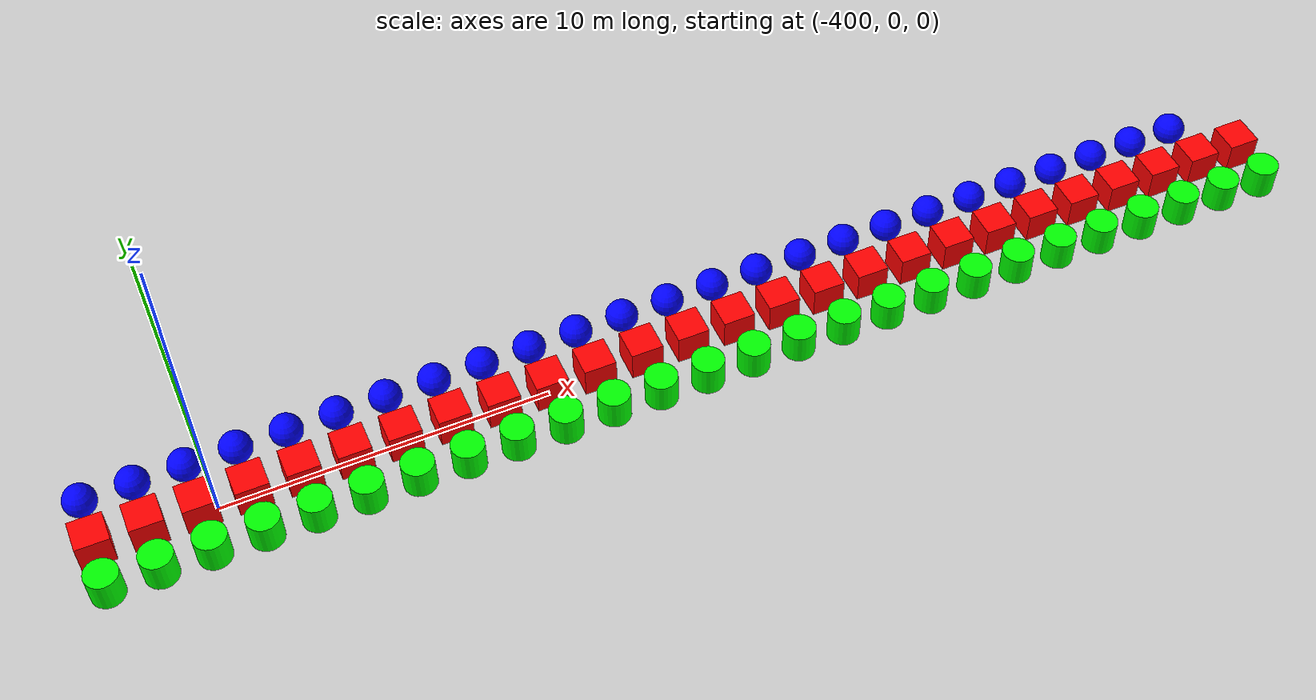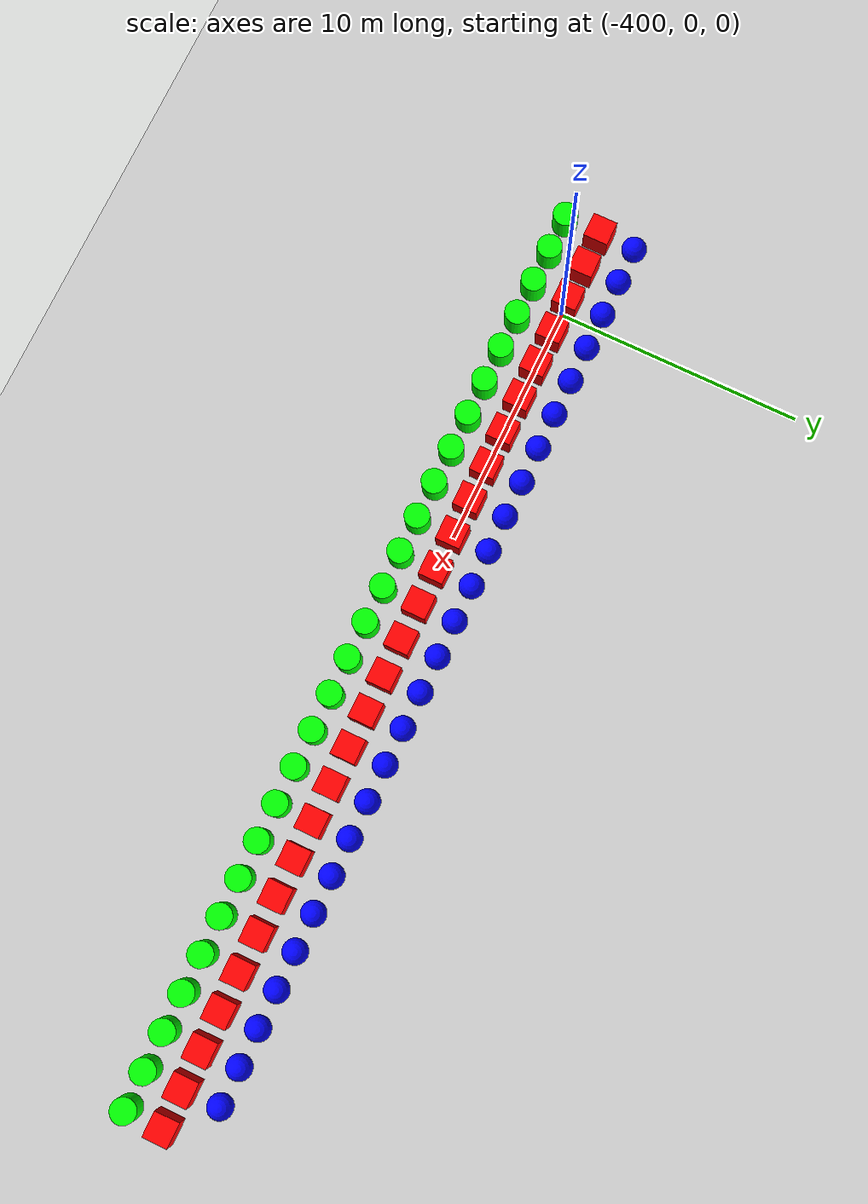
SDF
<sdf version="1.6">
 <world name="shapes">
  <model name="ground_plane">
   <static>true</static>
   <link name="link">
    <collision name="collision">
     <geometry><plane><normal>0 0 1</normal><size>100 100</size></plane></geometry>
    </collision>
    <visual name="visual">
     <geometry><plane><normal>0 0 1</normal><size>100 100</size></plane></geometry>
     <material>
      <ambient>0.8 0.8 0.8 1</ambient>
      <diffuse>0.8 0.8 0.8 1</diffuse>
      <specular>0.8 0.8 0.8 1</specular>
     </material>
    </visual>
   </link>
  </model>
  <model name="box_231">
   <static>true</static>
   <pose>-403.5 0 0.5 0 0 0</pose>
   <link name="box_link">
    <inertial>
     <inertia><ixx>1</ixx><ixy>0</ixy><ixz>0</ixz><iyy>1</iyy><iyz>0</iyz><izz>1</izz></inertia>
     <mass>1.0</mass>
    </inertial>
    <collision name="box_collision"><geometry><box><size>1 1 1</size></box></geometry></collision>
    <visual name="box_visual">
     <geometry><box><size>1 1 1</size></box></geometry>
     <material><ambient>1 0 0 1</ambient><diffuse>1 0 0 1</diffuse><specular>1 0 0 1</specular></material>
    </visual>
   </link>
  </model>
  <model name="cylinder_231">
   <static>true</static>
   <pose>-403.5 -1.5 0.5 0 0 0</pose>
   <link name="cylinder_link">
    <inertial>
     <inertia><ixx>2</ixx><ixy>0</ixy><ixz>0</ixz><iyy>2</iyy><iyz>0</iyz><izz>2</izz></inertia>
     <mass>2.0</mass>
    </inertial>
    <collision name="cylinder_collision">
     <geometry><cylinder><radius>0.5</radius><length>1.0</length></cylinder></geometry>
    </collision>
    <visual name="cylinder_visual">
     <geometry><cylinder><radius>0.5</radius><length>1.0</length></cylinder></geometry>
     <material><ambient>0 1 0 1</ambient><diffuse>0 1 0 1</diffuse><specular>0 1 0 1</specular></material>
    </visual>
   </link>
  </model>
  <model name="sphere_231">
   <static>true</static>
   <pose>-403.5 1.5 0.5 0 0 0</pose>
   <link name="sphere_link">
    <inertial>
     <inertia><ixx>3</ixx><ixy>0</ixy><ixz>0</ixz><iyy>3</iyy><iyz>0</iyz><izz>3</izz></inertia>
     <mass>3.0</mass>
    </inertial>
    <collision name="sphere_collision"><geometry><sphere><radius>0.5</radius></sphere></geometry></collision>
    <visual name="sphere_visual">
     <geometry><sphere><radius>0.5</radius></sphere></geometry>
     <material><ambient>0 0 1 1</ambient><diffuse>0 0 1 1</diffuse><specular>0 0 1 1</specular></material>
    </visual>
   </link>
  </model>
  <model name="box_232">
   <static>true</static>
   <pose>-402.0 0 0.5 0 0 0</pose>
   <link name="box_link">
    <inertial>
     <inertia><ixx>1</ixx><ixy>0</ixy><ixz>0</ixz><iyy>1</iyy><iyz>0</iyz><izz>1</izz></inertia>
     <mass>1.0</mass>
    </inertial>
    <collision name="box_collision"><geometry><box><size>1 1 1</size></box></geometry></collision>
    <visual name="box_visual">
     <geometry><box><size>1 1 1</size></box></geometry>
     <material><ambient>1 0 0 1</ambient><diffuse>1 0 0 1</diffuse><specular>1 0 0 1</specular></material>
    </visual>
   </link>
  </model>
  <model name="cylinder_232">
   <static>true</static>
   <pose>-402.0 -1.5 0.5 0 0 0</pose>
   <link name="cylinder_link">
    <inertial>
     <inertia><ixx>2</ixx><ixy>0</ixy><ixz>0</ixz><iyy>2</iyy><iyz>0</iyz><izz>2</izz></inertia>
     <mass>2.0</mass>
    </inertial>
    <collision name="cylinder_collision">
     <geometry><cylinder><radius>0.5</radius><length>1.0</length></cylinder></geometry>
    </collision>
    <visual name="cylinder_visual">
     <geometry><cylinder><radius>0.5</radius><length>1.0</length></cylinder></geometry>
     <material><ambient>0 1 0 1</ambient><diffuse>0 1 0 1</diffuse><specular>0 1 0 1</specular></material>
    </visual>
   </link>
  </model>
  <model name="sphere_232">
   <static>true</static>
   <pose>-402.0 1.5 0.5 0 0 0</pose>
   <link name="sphere_link">
    <inertial>
     <inertia><ixx>3</ixx><ixy>0</ixy><ixz>0</ixz><iyy>3</iyy><iyz>0</iyz><izz>3</izz></inertia>
     <mass>3.0</mass>
    </inertial>
    <collision name="sphere_collision"><geometry><sphere><radius>0.5</radius></sphere></geometry></collision>
    <visual name="sphere_visual">
     <geometry><sphere><radius>0.5</radius></sphere></geometry>
     <material><ambient>0 0 1 1</ambient><diffuse>0 0 1 1</diffuse><specular>0 0 1 1</specular></material>
    </visual>
   </link>
  </model>
  <model name="box_233">
   <static>true</static>
   <pose>-400.5 0 0.5 0 0 0</pose>
   <link name="box_link">
    <inertial>
     <inertia><ixx>1</ixx><ixy>0</ixy><ixz>0</ixz><iyy>1</iyy><iyz>0</iyz><izz>1</izz></inertia>
     <mass>1.0</mass>
    </inertial>
    <collision name="box_collision"><geometry><box><size>1 1 1</size></box></geometry></collision>
    <visual name="box_visual">
     <geometry><box><size>1 1 1</size></box></geometry>
     <material><ambient>1 0 0 1</ambient><diffuse>1 0 0 1</diffuse><specular>1 0 0 1</specular></material>
    </visual>
   </link>
  </model>
  <model name="cylinder_233">
   <static>true</static>
   <pose>-400.5 -1.5 0.5 0 0 0</pose>
   <link name="cylinder_link">
    <inertial>
     <inertia><ixx>2</ixx><ixy>0</ixy><ixz>0</ixz><iyy>2</iyy><iyz>0</iyz><izz>2</izz></inertia>
     <mass>2.0</mass>
    </inertial>
    <collision name="cylinder_collision">
     <geometry><cylinder><radius>0.5</radius><length>1.0</length></cylinder></geometry>
    </collision>
    <visual name="cylinder_visual">
     <geometry><cylinder><radius>0.5</radius><length>1.0</length></cylinder></geometry>
     <material><ambient>0 1 0 1</ambient><diffuse>0 1 0 1</diffuse><specular>0 1 0 1</specular></material>
    </visual>
   </link>
  </model>
  <model name="sphere_233">
   <static>true</static>
   <pose>-400.5 1.5 0.5 0 0 0</pose>
   <link name="sphere_link">
    <inertial>
     <inertia><ixx>3</ixx><ixy>0</ixy><ixz>0</ixz><iyy>3</iyy><iyz>0</iyz><izz>3</izz></inertia>
     <mass>3.0</mass>
    </inertial>
    <collision name="sphere_collision"><geometry><sphere><radius>0.5</radius></sphere></geometry></collision>
    <visual name="sphere_visual">
     <geometry><sphere><radius>0.5</radius></sphere></geometry>
     <material><ambient>0 0 1 1</ambient><diffuse>0 0 1 1</diffuse><specular>0 0 1 1</specular></material>
    </visual>
   </link>
  </model>
  <model name="box_234">
   <static>true</static>
   <pose>-399.0 0 0.5 0 0 0</pose>
   <link name="box_link">
    <inertial>
     <inertia><ixx>1</ixx><ixy>0</ixy><ixz>0</ixz><iyy>1</iyy><iyz>0</iyz><izz>1</izz></inertia>
     <mass>1.0</mass>
    </inertial>
    <collision name="box_collision"><geometry><box><size>1 1 1</size></box></geometry></collision>
    <visual name="box_visual">
     <geometry><box><size>1 1 1</size></box></geometry>
     <material><ambient>1 0 0 1</ambient><diffuse>1 0 0 1</diffuse><specular>1 0 0 1</specular></material>
    </visual>
   </link>
  </model>
  <model name="cylinder_234">
   <static>true</static>
   <pose>-399.0 -1.5 0.5 0 0 0</pose>
   <link name="cylinder_link">
    <inertial>
     <inertia><ixx>2</ixx><ixy>0</ixy><ixz>0</ixz><iyy>2</iyy><iyz>0</iyz><izz>2</izz></inertia>
     <mass>2.0</mass>
    </inertial>
    <collision name="cylinder_collision">
     <geometry><cylinder><radius>0.5</radius><length>1.0</length></cylinder></geometry>
    </collision>
    <visual name="cylinder_visual">
     <geometry><cylinder><radius>0.5</radius><length>1.0</length></cylinder></geometry>
     <material><ambient>0 1 0 1</ambient><diffuse>0 1 0 1</diffuse><specular>0 1 0 1</specular></material>
    </visual>
   </link>
  </model>
  <model name="sphere_234">
   <static>true</static>
   <pose>-399.0 1.5 0.5 0 0 0</pose>
   <link name="sphere_link">
    <inertial>
     <inertia><ixx>3</ixx><ixy>0</ixy><ixz>0</ixz><iyy>3</iyy><iyz>0</iyz><izz>3</izz></inertia>
     <mass>3.0</mass>
    </inertial>
    <collision name="sphere_collision"><geometry><sphere><radius>0.5</radius></sphere></geometry></collision>
    <visual name="sphere_visual">
     <geometry><sphere><radius>0.5</radius></sphere></geometry>
     <material><ambient>0 0 1 1</ambient><diffuse>0 0 1 1</diffuse><specular>0 0 1 1</specular></material>
    </visual>
   </link>
  </model>
  <model name="box_235">
   <static>true</static>
   <pose>-397.5 0 0.5 0 0 0</pose>
   <link name="box_link">
    <inertial>
     <inertia><ixx>1</ixx><ixy>0</ixy><ixz>0</ixz><iyy>1</iyy><iyz>0</iyz><izz>1</izz></inertia>
     <mass>1.0</mass>
    </inertial>
    <collision name="box_collision"><geometry><box><size>1 1 1</size></box></geometry></collision>
    <visual name="box_visual">
     <geometry><box><size>1 1 1</size></box></geometry>
     <material><ambient>1 0 0 1</ambient><diffuse>1 0 0 1</diffuse><specular>1 0 0 1</specular></material>
    </visual>
   </link>
  </model>
  <model name="cylinder_235">
   <static>true</static>
   <pose>-397.5 -1.5 0.5 0 0 0</pose>
   <link name="cylinder_link">
    <inertial>
     <inertia><ixx>2</ixx><ixy>0</ixy><ixz>0</ixz><iyy>2</iyy><iyz>0</iyz><izz>2</izz></inertia>
     <mass>2.0</mass>
    </inertial>
    <collision name="cylinder_collision">
     <geometry><cylinder><radius>0.5</radius><length>1.0</length></cylinder></geometry>
    </collision>
    <visual name="cylinder_visual">
     <geometry><cylinder><radius>0.5</radius><length>1.0</length></cylinder></geometry>
     <material><ambient>0 1 0 1</ambient><diffuse>0 1 0 1</diffuse><specular>0 1 0 1</specular></material>
    </visual>
   </link>
  </model>
  <model name="sphere_235">
   <static>true</static>
   <pose>-397.5 1.5 0.5 0 0 0</pose>
   <link name="sphere_link">
    <inertial>
     <inertia><ixx>3</ixx><ixy>0</ixy><ixz>0</ixz><iyy>3</iyy><iyz>0</iyz><izz>3</izz></inertia>
     <mass>3.0</mass>
    </inertial>
    <collision name="sphere_collision"><geometry><sphere><radius>0.5</radius></sphere></geometry></collision>
    <visual name="sphere_visual">
     <geometry><sphere><radius>0.5</radius></sphere></geometry>
     <material><ambient>0 0 1 1</ambient><diffuse>0 0 1 1</diffuse><specular>0 0 1 1</specular></material>
    </visual>
   </link>
  </model>
  <model name="box_236">
   <static>true</static>
   <pose>-396.0 0 0.5 0 0 0</pose>
   <link name="box_link">
    <inertial>
     <inertia><ixx>1</ixx><ixy>0</ixy><ixz>0</ixz><iyy>1</iyy><iyz>0</iyz><izz>1</izz></inertia>
     <mass>1.0</mass>
    </inertial>
    <collision name="box_collision"><geometry><box><size>1 1 1</size></box></geometry></collision>
    <visual name="box_visual">
     <geometry><box><size>1 1 1</size></box></geometry>
     <material><ambient>1 0 0 1</ambient><diffuse>1 0 0 1</diffuse><specular>1 0 0 1</specular></material>
    </visual>
   </link>
  </model>
  <model name="cylinder_236">
   <static>true</static>
   <pose>-396.0 -1.5 0.5 0 0 0</pose>
   <link name="cylinder_link">
    <inertial>
     <inertia><ixx>2</ixx><ixy>0</ixy><ixz>0</ixz><iyy>2</iyy><iyz>0</iyz><izz>2</izz></inertia>
     <mass>2.0</mass>
    </inertial>
    <collision name="cylinder_collision">
     <geometry><cylinder><radius>0.5</radius><length>1.0</length></cylinder></geometry>
    </collision>
    <visual name="cylinder_visual">
     <geometry><cylinder><radius>0.5</radius><length>1.0</length></cylinder></geometry>
     <material><ambient>0 1 0 1</ambient><diffuse>0 1 0 1</diffuse><specular>0 1 0 1</specular></material>
    </visual>
   </link>
  </model>
  <model name="sphere_236">
   <static>true</static>
   <pose>-396.0 1.5 0.5 0 0 0</pose>
   <link name="sphere_link">
    <inertial>
     <inertia><ixx>3</ixx><ixy>0</ixy><ixz>0</ixz><iyy>3</iyy><iyz>0</iyz><izz>3</izz></inertia>
     <mass>3.0</mass>
    </inertial>
    <collision name="sphere_collision"><geometry><sphere><radius>0.5</radius></sphere></geometry></collision>
    <visual name="sphere_visual">
     <geometry><sphere><radius>0.5</radius></sphere></geometry>
     <material><ambient>0 0 1 1</ambient><diffuse>0 0 1 1</diffuse><specular>0 0 1 1</specular></material>
    </visual>
   </link>
  </model>
  <model name="box_237">
   <static>true</static>
   <pose>-394.5 0 0.5 0 0 0</pose>
   <link name="box_link">
    <inertial>
     <inertia><ixx>1</ixx><ixy>0</ixy><ixz>0</ixz><iyy>1</iyy><iyz>0</iyz><izz>1</izz></inertia>
     <mass>1.0</mass>
    </inertial>
    <collision name="box_collision"><geometry><box><size>1 1 1</size></box></geometry></collision>
    <visual name="box_visual">
     <geometry><box><size>1 1 1</size></box></geometry>
     <material><ambient>1 0 0 1</ambient><diffuse>1 0 0 1</diffuse><specular>1 0 0 1</specular></material>
    </visual>
   </link>
  </model>
  <model name="cylinder_237">
   <static>true</static>
   <pose>-394.5 -1.5 0.5 0 0 0</pose>
   <link name="cylinder_link">
    <inertial>
     <inertia><ixx>2</ixx><ixy>0</ixy><ixz>0</ixz><iyy>2</iyy><iyz>0</iyz><izz>2</izz></inertia>
     <mass>2.0</mass>
    </inertial>
    <collision name="cylinder_collision">
     <geometry><cylinder><radius>0.5</radius><length>1.0</length></cylinder></geometry>
    </collision>
    <visual name="cylinder_visual">
     <geometry><cylinder><radius>0.5</radius><length>1.0</length></cylinder></geometry>
     <material><ambient>0 1 0 1</ambient><diffuse>0 1 0 1</diffuse><specular>0 1 0 1</specular></material>
    </visual>
   </link>
  </model>
  <model name="sphere_237">
   <static>true</static>
   <pose>-394.5 1.5 0.5 0 0 0</pose>
   <link name="sphere_link">
    <inertial>
     <inertia><ixx>3</ixx><ixy>0</ixy><ixz>0</ixz><iyy>3</iyy><iyz>0</iyz><izz>3</izz></inertia>
     <mass>3.0</mass>
    </inertial>
    <collision name="sphere_collision"><geometry><sphere><radius>0.5</radius></sphere></geometry></collision>
    <visual name="sphere_visual">
     <geometry><sphere><radius>0.5</radius></sphere></geometry>
     <material><ambient>0 0 1 1</ambient><diffuse>0 0 1 1</diffuse><specular>0 0 1 1</specular></material>
    </visual>
   </link>
  </model>
  <model name="box_238">
   <static>true</static>
   <pose>-393.0 0 0.5 0 0 0</pose>
   <link name="box_link">
    <inertial>
     <inertia><ixx>1</ixx><ixy>0</ixy><ixz>0</ixz><iyy>1</iyy><iyz>0</iyz><izz>1</izz></inertia>
     <mass>1.0</mass>
    </inertial>
    <collision name="box_collision"><geometry><box><size>1 1 1</size></box></geometry></collision>
    <visual name="box_visual">
     <geometry><box><size>1 1 1</size></box></geometry>
     <material><ambient>1 0 0 1</ambient><diffuse>1 0 0 1</diffuse><specular>1 0 0 1</specular></material>
    </visual>
   </link>
  </model>
  <model name="cylinder_238">
   <static>true</static>
   <pose>-393.0 -1.5 0.5 0 0 0</pose>
   <link name="cylinder_link">
    <inertial>
     <inertia><ixx>2</ixx><ixy>0</ixy><ixz>0</ixz><iyy>2</iyy><iyz>0</iyz><izz>2</izz></inertia>
     <mass>2.0</mass>
    </inertial>
    <collision name="cylinder_collision">
     <geometry><cylinder><radius>0.5</radius><length>1.0</length></cylinder></geometry>
    </collision>
    <visual name="cylinder_visual">
     <geometry><cylinder><radius>0.5</radius><length>1.0</length></cylinder></geometry>
     <material><ambient>0 1 0 1</ambient><diffuse>0 1 0 1</diffuse><specular>0 1 0 1</specular></material>
    </visual>
   </link>
  </model>
  <model name="sphere_238">
   <static>true</static>
   <pose>-393.0 1.5 0.5 0 0 0</pose>
   <link name="sphere_link">
    <inertial>
     <inertia><ixx>3</ixx><ixy>0</ixy><ixz>0</ixz><iyy>3</iyy><iyz>0</iyz><izz>3</izz></inertia>
     <mass>3.0</mass>
    </inertial>
    <collision name="sphere_collision"><geometry><sphere><radius>0.5</radius></sphere></geometry></collision>
    <visual name="sphere_visual">
     <geometry><sphere><radius>0.5</radius></sphere></geometry>
     <material><ambient>0 0 1 1</ambient><diffuse>0 0 1 1</diffuse><specular>0 0 1 1</specular></material>
    </visual>
   </link>
  </model>
  <model name="box_239">
   <static>true</static>
   <pose>-391.5 0 0.5 0 0 0</pose>
   <link name="box_link">
    <inertial>
     <inertia><ixx>1</ixx><ixy>0</ixy><ixz>0</ixz><iyy>1</iyy><iyz>0</iyz><izz>1</izz></inertia>
     <mass>1.0</mass>
    </inertial>
    <collision name="box_collision"><geometry><box><size>1 1 1</size></box></geometry></collision>
    <visual name="box_visual">
     <geometry><box><size>1 1 1</size></box></geometry>
     <material><ambient>1 0 0 1</ambient><diffuse>1 0 0 1</diffuse><specular>1 0 0 1</specular></material>
    </visual>
   </link>
  </model>
  <model name="cylinder_239">
   <static>true</static>
   <pose>-391.5 -1.5 0.5 0 0 0</pose>
   <link name="cylinder_link">
    <inertial>
     <inertia><ixx>2</ixx><ixy>0</ixy><ixz>0</ixz><iyy>2</iyy><iyz>0</iyz><izz>2</izz></inertia>
     <mass>2.0</mass>
    </inertial>
    <collision name="cylinder_collision">
     <geometry><cylinder><radius>0.5</radius><length>1.0</length></cylinder></geometry>
    </collision>
    <visual name="cylinder_visual">
     <geometry><cylinder><radius>0.5</radius><length>1.0</length></cylinder></geometry>
     <material><ambient>0 1 0 1</ambient><diffuse>0 1 0 1</diffuse><specular>0 1 0 1</specular></material>
    </visual>
   </link>
  </model>
  <model name="sphere_239">
   <static>true</static>
   <pose>-391.5 1.5 0.5 0 0 0</pose>
   <link name="sphere_link">
    <inertial>
     <inertia><ixx>3</ixx><ixy>0</ixy><ixz>0</ixz><iyy>3</iyy><iyz>0</iyz><izz>3</izz></inertia>
     <mass>3.0</mass>
    </inertial>
    <collision name="sphere_collision"><geometry><sphere><radius>0.5</radius></sphere></geometry></collision>
    <visual name="sphere_visual">
     <geometry><sphere><radius>0.5</radius></sphere></geometry>
     <material><ambient>0 0 1 1</ambient><diffuse>0 0 1 1</diffuse><specular>0 0 1 1</specular></material>
    </visual>
   </link>
  </model>
  <model name="box_240">
   <static>true</static>
   <pose>-390.0 0 0.5 0 0 0</pose>
   <link name="box_link">
    <inertial>
     <inertia><ixx>1</ixx><ixy>0</ixy><ixz>0</ixz><iyy>1</iyy><iyz>0</iyz><izz>1</izz></inertia>
     <mass>1.0</mass>
    </inertial>
    <collision name="box_collision"><geometry><box><size>1 1 1</size></box></geometry></collision>
    <visual name="box_visual">
     <geometry><box><size>1 1 1</size></box></geometry>
     <material><ambient>1 0 0 1</ambient><diffuse>1 0 0 1</diffuse><specular>1 0 0 1</specular></material>
    </visual>
   </link>
  </model>
  <model name="cylinder_240">
   <static>true</static>
   <pose>-390.0 -1.5 0.5 0 0 0</pose>
   <link name="cylinder_link">
    <inertial>
     <inertia><ixx>2</ixx><ixy>0</ixy><ixz>0</ixz><iyy>2</iyy><iyz>0</iyz><izz>2</izz></inertia>
     <mass>2.0</mass>
    </inertial>
    <collision name="cylinder_collision">
     <geometry><cylinder><radius>0.5</radius><length>1.0</length></cylinder></geometry>
    </collision>
    <visual name="cylinder_visual">
     <geometry><cylinder><radius>0.5</radius><length>1.0</length></cylinder></geometry>
     <material><ambient>0 1 0 1</ambient><diffuse>0 1 0 1</diffuse><specular>0 1 0 1</specular></material>
    </visual>
   </link>
  </model>
  <model name="sphere_240">
   <static>true</static>
   <pose>-390.0 1.5 0.5 0 0 0</pose>
   <link name="sphere_link">
    <inertial>
     <inertia><ixx>3</ixx><ixy>0</ixy><ixz>0</ixz><iyy>3</iyy><iyz>0</iyz><izz>3</izz></inertia>
     <mass>3.0</mass>
    </inertial>
    <collision name="sphere_collision"><geometry><sphere><radius>0.5</radius></sphere></geometry></collision>
    <visual name="sphere_visual">
     <geometry><sphere><radius>0.5</radius></sphere></geometry>
     <material><ambient>0 0 1 1</ambient><diffuse>0 0 1 1</diffuse><specular>0 0 1 1</specular></material>
    </visual>
   </link>
  </model>
  <model name="box_241">
   <static>true</static>
   <pose>-388.5 0 0.5 0 0 0</pose>
   <link name="box_link">
    <inertial>
     <inertia><ixx>1</ixx><ixy>0</ixy><ixz>0</ixz><iyy>1</iyy><iyz>0</iyz><izz>1</izz></inertia>
     <mass>1.0</mass>
    </inertial>
    <collision name="box_collision"><geometry><box><size>1 1 1</size></box></geometry></collision>
    <visual name="box_visual">
     <geometry><box><size>1 1 1</size></box></geometry>
     <material><ambient>1 0 0 1</ambient><diffuse>1 0 0 1</diffuse><specular>1 0 0 1</specular></material>
    </visual>
   </link>
  </model>
  <model name="cylinder_241">
   <static>true</static>
   <pose>-388.5 -1.5 0.5 0 0 0</pose>
   <link name="cylinder_link">
    <inertial>
     <inertia><ixx>2</ixx><ixy>0</ixy><ixz>0</ixz><iyy>2</iyy><iyz>0</iyz><izz>2</izz></inertia>
     <mass>2.0</mass>
    </inertial>
    <collision name="cylinder_collision">
     <geometry><cylinder><radius>0.5</radius><length>1.0</length></cylinder></geometry>
    </collision>
    <visual name="cylinder_visual">
     <geometry><cylinder><radius>0.5</radius><length>1.0</length></cylinder></geometry>
     <material><ambient>0 1 0 1</ambient><diffuse>0 1 0 1</diffuse><specular>0 1 0 1</specular></material>
    </visual>
   </link>
  </model>
  <model name="sphere_241">
   <static>true</static>
   <pose>-388.5 1.5 0.5 0 0 0</pose>
   <link name="sphere_link">
    <inertial>
     <inertia><ixx>3</ixx><ixy>0</ixy><ixz>0</ixz><iyy>3</iyy><iyz>0</iyz><izz>3</izz></inertia>
     <mass>3.0</mass>
    </inertial>
    <collision name="sphere_collision"><geometry><sphere><radius>0.5</radius></sphere></geometry></collision>
    <visual name="sphere_visual">
     <geometry><sphere><radius>0.5</radius></sphere></geometry>
     <material><ambient>0 0 1 1</ambient><diffuse>0 0 1 1</diffuse><specular>0 0 1 1</specular></material>
    </visual>
   </link>
  </model>
  <model name="box_242">
   <static>true</static>
   <pose>-387.0 0 0.5 0 0 0</pose>
   <link name="box_link">
    <inertial>
     <inertia><ixx>1</ixx><ixy>0</ixy><ixz>0</ixz><iyy>1</iyy><iyz>0</iyz><izz>1</izz></inertia>
     <mass>1.0</mass>
    </inertial>
    <collision name="box_collision"><geometry><box><size>1 1 1</size></box></geometry></collision>
    <visual name="box_visual">
     <geometry><box><size>1 1 1</size></box></geometry>
     <material><ambient>1 0 0 1</ambient><diffuse>1 0 0 1</diffuse><specular>1 0 0 1</specular></material>
    </visual>
   </link>
  </model>
  <model name="cylinder_242">
   <static>true</static>
   <pose>-387.0 -1.5 0.5 0 0 0</pose>
   <link name="cylinder_link">
    <inertial>
     <inertia><ixx>2</ixx><ixy>0</ixy><ixz>0</ixz><iyy>2</iyy><iyz>0</iyz><izz>2</izz></inertia>
     <mass>2.0</mass>
    </inertial>
    <collision name="cylinder_collision">
     <geometry><cylinder><radius>0.5</radius><length>1.0</length></cylinder></geometry>
    </collision>
    <visual name="cylinder_visual">
     <geometry><cylinder><radius>0.5</radius><length>1.0</length></cylinder></geometry>
     <material><ambient>0 1 0 1</ambient><diffuse>0 1 0 1</diffuse><specular>0 1 0 1</specular></material>
    </visual>
   </link>
  </model>
  <model name="sphere_242">
   <static>true</static>
   <pose>-387.0 1.5 0.5 0 0 0</pose>
   <link name="sphere_link">
    <inertial>
     <inertia><ixx>3</ixx><ixy>0</ixy><ixz>0</ixz><iyy>3</iyy><iyz>0</iyz><izz>3</izz></inertia>
     <mass>3.0</mass>
    </inertial>
    <collision name="sphere_collision"><geometry><sphere><radius>0.5</radius></sphere></geometry></collision>
    <visual name="sphere_visual">
     <geometry><sphere><radius>0.5</radius></sphere></geometry>
     <material><ambient>0 0 1 1</ambient><diffuse>0 0 1 1</diffuse><specular>0 0 1 1</specular></material>
    </visual>
   </link>
  </model>
  <model name="box_243">
   <static>true</static>
   <pose>-385.5 0 0.5 0 0 0</pose>
   <link name="box_link">
    <inertial>
     <inertia><ixx>1</ixx><ixy>0</ixy><ixz>0</ixz><iyy>1</iyy><iyz>0</iyz><izz>1</izz></inertia>
     <mass>1.0</mass>
    </inertial>
    <collision name="box_collision"><geometry><box><size>1 1 1</size></box></geometry></collision>
    <visual name="box_visual">
     <geometry><box><size>1 1 1</size></box></geometry>
     <material><ambient>1 0 0 1</ambient><diffuse>1 0 0 1</diffuse><specular>1 0 0 1</specular></material>
    </visual>
   </link>
  </model>
  <model name="cylinder_243">
   <static>true</static>
   <pose>-385.5 -1.5 0.5 0 0 0</pose>
   <link name="cylinder_link">
    <inertial>
     <inertia><ixx>2</ixx><ixy>0</ixy><ixz>0</ixz><iyy>2</iyy><iyz>0</iyz><izz>2</izz></inertia>
     <mass>2.0</mass>
    </inertial>
    <collision name="cylinder_collision">
     <geometry><cylinder><radius>0.5</radius><length>1.0</length></cylinder></geometry>
    </collision>
    <visual name="cylinder_visual">
     <geometry><cylinder><radius>0.5</radius><length>1.0</length></cylinder></geometry>
     <material><ambient>0 1 0 1</ambient><diffuse>0 1 0 1</diffuse><specular>0 1 0 1</specular></material>
    </visual>
   </link>
  </model>
  <model name="sphere_243">
   <static>true</static>
   <pose>-385.5 1.5 0.5 0 0 0</pose>
   <link name="sphere_link">
    <inertial>
     <inertia><ixx>3</ixx><ixy>0</ixy><ixz>0</ixz><iyy>3</iyy><iyz>0</iyz><izz>3</izz></inertia>
     <mass>3.0</mass>
    </inertial>
    <collision name="sphere_collision"><geometry><sphere><radius>0.5</radius></sphere></geometry></collision>
    <visual name="sphere_visual">
     <geometry><sphere><radius>0.5</radius></sphere></geometry>
     <material><ambient>0 0 1 1</ambient><diffuse>0 0 1 1</diffuse><specular>0 0 1 1</specular></material>
    </visual>
   </link>
  </model>
  <model name="box_244">
   <static>true</static>
   <pose>-384.0 0 0.5 0 0 0</pose>
   <link name="box_link">
    <inertial>
     <inertia><ixx>1</ixx><ixy>0</ixy><ixz>0</ixz><iyy>1</iyy><iyz>0</iyz><izz>1</izz></inertia>
     <mass>1.0</mass>
    </inertial>
    <collision name="box_collision"><geometry><box><size>1 1 1</size></box></geometry></collision>
    <visual name="box_visual">
     <geometry><box><size>1 1 1</size></box></geometry>
     <material><ambient>1 0 0 1</ambient><diffuse>1 0 0 1</diffuse><specular>1 0 0 1</specular></material>
    </visual>
   </link>
  </model>
  <model name="cylinder_244">
   <static>true</static>
   <pose>-384.0 -1.5 0.5 0 0 0</pose>
   <link name="cylinder_link">
    <inertial>
     <inertia><ixx>2</ixx><ixy>0</ixy><ixz>0</ixz><iyy>2</iyy><iyz>0</iyz><izz>2</izz></inertia>
     <mass>2.0</mass>
    </inertial>
    <collision name="cylinder_collision">
     <geometry><cylinder><radius>0.5</radius><length>1.0</length></cylinder></geometry>
    </collision>
    <visual name="cylinder_visual">
     <geometry><cylinder><radius>0.5</radius><length>1.0</length></cylinder></geometry>
     <material><ambient>0 1 0 1</ambient><diffuse>0 1 0 1</diffuse><specular>0 1 0 1</specular></material>
    </visual>
   </link>
  </model>
  <model name="sphere_244">
   <static>true</static>
   <pose>-384.0 1.5 0.5 0 0 0</pose>
   <link name="sphere_link">
    <inertial>
     <inertia><ixx>3</ixx><ixy>0</ixy><ixz>0</ixz><iyy>3</iyy><iyz>0</iyz><izz>3</izz></inertia>
     <mass>3.0</mass>
    </inertial>
    <collision name="sphere_collision"><geometry><sphere><radius>0.5</radius></sphere></geometry></collision>
    <visual name="sphere_visual">
     <geometry><sphere><radius>0.5</radius></sphere></geometry>
     <material><ambient>0 0 1 1</ambient><diffuse>0 0 1 1</diffuse><specular>0 0 1 1</specular></material>
    </visual>
   </link>
  </model>
  <model name="box_245">
   <static>true</static>
   <pose>-382.5 0 0.5 0 0 0</pose>
   <link name="box_link">
    <inertial>
     <inertia><ixx>1</ixx><ixy>0</ixy><ixz>0</ixz><iyy>1</iyy><iyz>0</iyz><izz>1</izz></inertia>
     <mass>1.0</mass>
    </inertial>
    <collision name="box_collision"><geometry><box><size>1 1 1</size></box></geometry></collision>
    <visual name="box_visual">
     <geometry><box><size>1 1 1</size></box></geometry>
     <material><ambient>1 0 0 1</ambient><diffuse>1 0 0 1</diffuse><specular>1 0 0 1</specular></material>
    </visual>
   </link>
  </model>
  <model name="cylinder_245">
   <static>true</static>
   <pose>-382.5 -1.5 0.5 0 0 0</pose>
   <link name="cylinder_link">
    <inertial>
     <inertia><ixx>2</ixx><ixy>0</ixy><ixz>0</ixz><iyy>2</iyy><iyz>0</iyz><izz>2</izz></inertia>
     <mass>2.0</mass>
    </inertial>
    <collision name="cylinder_collision">
     <geometry><cylinder><radius>0.5</radius><length>1.0</length></cylinder></geometry>
    </collision>
    <visual name="cylinder_visual">
     <geometry><cylinder><radius>0.5</radius><length>1.0</length></cylinder></geometry>
     <material><ambient>0 1 0 1</ambient><diffuse>0 1 0 1</diffuse><specular>0 1 0 1</specular></material>
    </visual>
   </link>
  </model>
  <model name="sphere_245">
   <static>true</static>
   <pose>-382.5 1.5 0.5 0 0 0</pose>
   <link name="sphere_link">
    <inertial>
     <inertia><ixx>3</ixx><ixy>0</ixy><ixz>0</ixz><iyy>3</iyy><iyz>0</iyz><izz>3</izz></inertia>
     <mass>3.0</mass>
    </inertial>
    <collision name="sphere_collision"><geometry><sphere><radius>0.5</radius></sphere></geometry></collision>
    <visual name="sphere_visual">
     <geometry><sphere><radius>0.5</radius></sphere></geometry>
     <material><ambient>0 0 1 1</ambient><diffuse>0 0 1 1</diffuse><specular>0 0 1 1</specular></material>
    </visual>
   </link>
  </model>
  <model name="box_246">
   <static>true</static>
   <pose>-381.0 0 0.5 0 0 0</pose>
   <link name="box_link">
    <inertial>
     <inertia><ixx>1</ixx><ixy>0</ixy><ixz>0</ixz><iyy>1</iyy><iyz>0</iyz><izz>1</izz></inertia>
     <mass>1.0</mass>
    </inertial>
    <collision name="box_collision"><geometry><box><size>1 1 1</size></box></geometry></collision>
    <visual name="box_visual">
     <geometry><box><size>1 1 1</size></box></geometry>
     <material><ambient>1 0 0 1</ambient><diffuse>1 0 0 1</diffuse><specular>1 0 0 1</specular></material>
    </visual>
   </link>
  </model>
  <model name="cylinder_246">
   <static>true</static>
   <pose>-381.0 -1.5 0.5 0 0 0</pose>
   <link name="cylinder_link">
    <inertial>
     <inertia><ixx>2</ixx><ixy>0</ixy><ixz>0</ixz><iyy>2</iyy><iyz>0</iyz><izz>2</izz></inertia>
     <mass>2.0</mass>
    </inertial>
    <collision name="cylinder_collision">
     <geometry><cylinder><radius>0.5</radius><length>1.0</length></cylinder></geometry>
    </collision>
    <visual name="cylinder_visual">
     <geometry><cylinder><radius>0.5</radius><length>1.0</length></cylinder></geometry>
     <material><ambient>0 1 0 1</ambient><diffuse>0 1 0 1</diffuse><specular>0 1 0 1</specular></material>
    </visual>
   </link>
  </model>
  <model name="sphere_246">
   <static>true</static>
   <pose>-381.0 1.5 0.5 0 0 0</pose>
   <link name="sphere_link">
    <inertial>
     <inertia><ixx>3</ixx><ixy>0</ixy><ixz>0</ixz><iyy>3</iyy><iyz>0</iyz><izz>3</izz></inertia>
     <mass>3.0</mass>
    </inertial>
    <collision name="sphere_collision"><geometry><sphere><radius>0.5</radius></sphere></geometry></collision>
    <visual name="sphere_visual">
     <geometry><sphere><radius>0.5</radius></sphere></geometry>
     <material><ambient>0 0 1 1</ambient><diffuse>0 0 1 1</diffuse><specular>0 0 1 1</specular></material>
    </visual>
   </link>
  </model>
  <model name="box_247">
   <static>true</static>
   <pose>-379.5 0 0.5 0 0 0</pose>
   <link name="box_link">
    <inertial>
     <inertia><ixx>1</ixx><ixy>0</ixy><ixz>0</ixz><iyy>1</iyy><iyz>0</iyz><izz>1</izz></inertia>
     <mass>1.0</mass>
    </inertial>
    <collision name="box_collision"><geometry><box><size>1 1 1</size></box></geometry></collision>
    <visual name="box_visual">
     <geometry><box><size>1 1 1</size></box></geometry>
     <material><ambient>1 0 0 1</ambient><diffuse>1 0 0 1</diffuse><specular>1 0 0 1</specular></material>
    </visual>
   </link>
  </model>
  <model name="cylinder_247">
   <static>true</static>
   <pose>-379.5 -1.5 0.5 0 0 0</pose>
   <link name="cylinder_link">
    <inertial>
     <inertia><ixx>2</ixx><ixy>0</ixy><ixz>0</ixz><iyy>2</iyy><iyz>0</iyz><izz>2</izz></inertia>
     <mass>2.0</mass>
    </inertial>
    <collision name="cylinder_collision">
     <geometry><cylinder><radius>0.5</radius><length>1.0</length></cylinder></geometry>
    </collision>
    <visual name="cylinder_visual">
     <geometry><cylinder><radius>0.5</radius><length>1.0</length></cylinder></geometry>
     <material><ambient>0 1 0 1</ambient><diffuse>0 1 0 1</diffuse><specular>0 1 0 1</specular></material>
    </visual>
   </link>
  </model>
  <model name="sphere_247">
   <static>true</static>
   <pose>-379.5 1.5 0.5 0 0 0</pose>
   <link name="sphere_link">
    <inertial>
     <inertia><ixx>3</ixx><ixy>0</ixy><ixz>0</ixz><iyy>3</iyy><iyz>0</iyz><izz>3</izz></inertia>
     <mass>3.0</mass>
    </inertial>
    <collision name="sphere_collision"><geometry><sphere><radius>0.5</radius></sphere></geometry></collision>
    <visual name="sphere_visual">
     <geometry><sphere><radius>0.5</radius></sphere></geometry>
     <material><ambient>0 0 1 1</ambient><diffuse>0 0 1 1</diffuse><specular>0 0 1 1</specular></material>
    </visual>
   </link>
  </model>
  <model name="box_248">
   <static>true</static>
   <pose>-378.0 0 0.5 0 0 0</pose>
   <link name="box_link">
    <inertial>
     <inertia><ixx>1</ixx><ixy>0</ixy><ixz>0</ixz><iyy>1</iyy><iyz>0</iyz><izz>1</izz></inertia>
     <mass>1.0</mass>
    </inertial>
    <collision name="box_collision"><geometry><box><size>1 1 1</size></box></geometry></collision>
    <visual name="box_visual">
     <geometry><box><size>1 1 1</size></box></geometry>
     <material><ambient>1 0 0 1</ambient><diffuse>1 0 0 1</diffuse><specular>1 0 0 1</specular></material>
    </visual>
   </link>
  </model>
  <model name="cylinder_248">
   <static>true</static>
   <pose>-378.0 -1.5 0.5 0 0 0</pose>
   <link name="cylinder_link">
    <inertial>
     <inertia><ixx>2</ixx><ixy>0</ixy><ixz>0</ixz><iyy>2</iyy><iyz>0</iyz><izz>2</izz></inertia>
     <mass>2.0</mass>
    </inertial>
    <collision name="cylinder_collision">
     <geometry><cylinder><radius>0.5</radius><length>1.0</length></cylinder></geometry>
    </collision>
    <visual name="cylinder_visual">
     <geometry><cylinder><radius>0.5</radius><length>1.0</length></cylinder></geometry>
     <material><ambient>0 1 0 1</ambient><diffuse>0 1 0 1</diffuse><specular>0 1 0 1</specular></material>
    </visual>
   </link>
  </model>
  <model name="sphere_248">
   <static>true</static>
   <pose>-378.0 1.5 0.5 0 0 0</pose>
   <link name="sphere_link">
    <inertial>
     <inertia><ixx>3</ixx><ixy>0</ixy><ixz>0</ixz><iyy>3</iyy><iyz>0</iyz><izz>3</izz></inertia>
     <mass>3.0</mass>
    </inertial>
    <collision name="sphere_collision"><geometry><sphere><radius>0.5</radius></sphere></geometry></collision>
    <visual name="sphere_visual">
     <geometry><sphere><radius>0.5</radius></sphere></geometry>
     <material><ambient>0 0 1 1</ambient><diffuse>0 0 1 1</diffuse><specular>0 0 1 1</specular></material>
    </visual>
   </link>
  </model>
  <model name="box_249">
   <static>true</static>
   <pose>-376.5 0 0.5 0 0 0</pose>
   <link name="box_link">
    <inertial>
     <inertia><ixx>1</ixx><ixy>0</ixy><ixz>0</ixz><iyy>1</iyy><iyz>0</iyz><izz>1</izz></inertia>
     <mass>1.0</mass>
    </inertial>
    <collision name="box_collision"><geometry><box><size>1 1 1</size></box></geometry></collision>
    <visual name="box_visual">
     <geometry><box><size>1 1 1</size></box></geometry>
     <material><ambient>1 0 0 1</ambient><diffuse>1 0 0 1</diffuse><specular>1 0 0 1</specular></material>
    </visual>
   </link>
  </model>
  <model name="cylinder_249">
   <static>true</static>
   <pose>-376.5 -1.5 0.5 0 0 0</pose>
   <link name="cylinder_link">
    <inertial>
     <inertia><ixx>2</ixx><ixy>0</ixy><ixz>0</ixz><iyy>2</iyy><iyz>0</iyz><izz>2</izz></inertia>
     <mass>2.0</mass>
    </inertial>
    <collision name="cylinder_collision">
     <geometry><cylinder><radius>0.5</radius><length>1.0</length></cylinder></geometry>
    </collision>
    <visual name="cylinder_visual">
     <geometry><cylinder><radius>0.5</radius><length>1.0</length></cylinder></geometry>
     <material><ambient>0 1 0 1</ambient><diffuse>0 1 0 1</diffuse><specular>0 1 0 1</specular></material>
    </visual>
   </link>
  </model>
  <model name="sphere_249">
   <static>true</static>
   <pose>-376.5 1.5 0.5 0 0 0</pose>
   <link name="sphere_link">
    <inertial>
     <inertia><ixx>3</ixx><ixy>0</ixy><ixz>0</ixz><iyy>3</iyy><iyz>0</iyz><izz>3</izz></inertia>
     <mass>3.0</mass>
    </inertial>
    <collision name="sphere_collision"><geometry><sphere><radius>0.5</radius></sphere></geometry></collision>
    <visual name="sphere_visual">
     <geometry><sphere><radius>0.5</radius></sphere></geometry>
     <material><ambient>0 0 1 1</ambient><diffuse>0 0 1 1</diffuse><specular>0 0 1 1</specular></material>
    </visual>
   </link>
  </model>
  <model name="box_250">
   <static>true</static>
   <pose>-375.0 0 0.5 0 0 0</pose>
   <link name="box_link">
    <inertial>
     <inertia><ixx>1</ixx><ixy>0</ixy><ixz>0</ixz><iyy>1</iyy><iyz>0</iyz><izz>1</izz></inertia>
     <mass>1.0</mass>
    </inertial>
    <collision name="box_collision"><geometry><box><size>1 1 1</size></box></geometry></collision>
    <visual name="box_visual">
     <geometry><box><size>1 1 1</size></box></geometry>
     <material><ambient>1 0 0 1</ambient><diffuse>1 0 0 1</diffuse><specular>1 0 0 1</specular></material>
    </visual>
   </link>
  </model>
  <model name="cylinder_250">
   <static>true</static>
   <pose>-375.0 -1.5 0.5 0 0 0</pose>
   <link name="cylinder_link">
    <inertial>
     <inertia><ixx>2</ixx><ixy>0</ixy><ixz>0</ixz><iyy>2</iyy><iyz>0</iyz><izz>2</izz></inertia>
     <mass>2.0</mass>
    </inertial>
    <collision name="cylinder_collision">
     <geometry><cylinder><radius>0.5</radius><length>1.0</length></cylinder></geometry>
    </collision>
    <visual name="cylinder_visual">
     <geometry><cylinder><radius>0.5</radius><length>1.0</length></cylinder></geometry>
     <material><ambient>0 1 0 1</ambient><diffuse>0 1 0 1</diffuse><specular>0 1 0 1</specular></material>
    </visual>
   </link>
  </model>
  <model name="sphere_250">
   <static>true</static>
   <pose>-375.0 1.5 0.5 0 0 0</pose>
   <link name="sphere_link">
    <inertial>
     <inertia><ixx>3</ixx><ixy>0</ixy><ixz>0</ixz><iyy>3</iyy><iyz>0</iyz><izz>3</izz></inertia>
     <mass>3.0</mass>
    </inertial>
    <collision name="sphere_collision"><geometry><sphere><radius>0.5</radius></sphere></geometry></collision>
    <visual name="sphere_visual">
     <geometry><sphere><radius>0.5</radius></sphere></geometry>
     <material><ambient>0 0 1 1</ambient><diffuse>0 0 1 1</diffuse><specular>0 0 1 1</specular></material>
    </visual>
   </link>
  </model>
  <model name="box_251">
   <static>true</static>
   <pose>-373.5 0 0.5 0 0 0</pose>
   <link name="box_link">
    <inertial>
     <inertia><ixx>1</ixx><ixy>0</ixy><ixz>0</ixz><iyy>1</iyy><iyz>0</iyz><izz>1</izz></inertia>
     <mass>1.0</mass>
    </inertial>
    <collision name="box_collision"><geometry><box><size>1 1 1</size></box></geometry></collision>
    <visual name="box_visual">
     <geometry><box><size>1 1 1</size></box></geometry>
     <material><ambient>1 0 0 1</ambient><diffuse>1 0 0 1</diffuse><specular>1 0 0 1</specular></material>
    </visual>
   </link>
  </model>
  <model name="cylinder_251">
   <static>true</static>
   <pose>-373.5 -1.5 0.5 0 0 0</pose>
   <link name="cylinder_link">
    <inertial>
     <inertia><ixx>2</ixx><ixy>0</ixy><ixz>0</ixz><iyy>2</iyy><iyz>0</iyz><izz>2</izz></inertia>
     <mass>2.0</mass>
    </inertial>
    <collision name="cylinder_collision">
     <geometry><cylinder><radius>0.5</radius><length>1.0</length></cylinder></geometry>
    </collision>
    <visual name="cylinder_visual">
     <geometry><cylinder><radius>0.5</radius><length>1.0</length></cylinder></geometry>
     <material><ambient>0 1 0 1</ambient><diffuse>0 1 0 1</diffuse><specular>0 1 0 1</specular></material>
    </visual>
   </link>
  </model>
  <model name="sphere_251">
   <static>true</static>
   <pose>-373.5 1.5 0.5 0 0 0</pose>
   <link name="sphere_link">
    <inertial>
     <inertia><ixx>3</ixx><ixy>0</ixy><ixz>0</ixz><iyy>3</iyy><iyz>0</iyz><izz>3</izz></inertia>
     <mass>3.0</mass>
    </inertial>
    <collision name="sphere_collision"><geometry><sphere><radius>0.5</radius></sphere></geometry></collision>
    <visual name="sphere_visual">
     <geometry><sphere><radius>0.5</radius></sphere></geometry>
     <material><ambient>0 0 1 1</ambient><diffuse>0 0 1 1</diffuse><specular>0 0 1 1</specular></material>
    </visual>
   </link>
  </model>
  <model name="box_252">
   <static>true</static>
   <pose>-372.0 0 0.5 0 0 0</pose>
   <link name="box_link">
    <inertial>
     <inertia><ixx>1</ixx><ixy>0</ixy><ixz>0</ixz><iyy>1</iyy><iyz>0</iyz><izz>1</izz></inertia>
     <mass>1.0</mass>
    </inertial>
    <collision name="box_collision"><geometry><box><size>1 1 1</size></box></geometry></collision>
    <visual name="box_visual">
     <geometry><box><size>1 1 1</size></box></geometry>
     <material><ambient>1 0 0 1</ambient><diffuse>1 0 0 1</diffuse><specular>1 0 0 1</specular></material>
    </visual>
   </link>
  </model>
  <model name="cylinder_252">
   <static>true</static>
   <pose>-372.0 -1.5 0.5 0 0 0</pose>
   <link name="cylinder_link">
    <inertial>
     <inertia><ixx>2</ixx><ixy>0</ixy><ixz>0</ixz><iyy>2</iyy><iyz>0</iyz><izz>2</izz></inertia>
     <mass>2.0</mass>
    </inertial>
    <collision name="cylinder_collision">
     <geometry><cylinder><radius>0.5</radius><length>1.0</length></cylinder></geometry>
    </collision>
    <visual name="cylinder_visual">
     <geometry><cylinder><radius>0.5</radius><length>1.0</length></cylinder></geometry>
     <material><ambient>0 1 0 1</ambient><diffuse>0 1 0 1</diffuse><specular>0 1 0 1</specular></material>
    </visual>
   </link>
  </model>
  <model name="sphere_252">
   <static>true</static>
   <pose>-372.0 1.5 0.5 0 0 0</pose>
   <link name="sphere_link">
    <inertial>
     <inertia><ixx>3</ixx><ixy>0</ixy><ixz>0</ixz><iyy>3</iyy><iyz>0</iyz><izz>3</izz></inertia>
     <mass>3.0</mass>
    </inertial>
    <collision name="sphere_collision"><geometry><sphere><radius>0.5</radius></sphere></geometry></collision>
    <visual name="sphere_visual">
     <geometry><sphere><radius>0.5</radius></sphere></geometry>
     <material><ambient>0 0 1 1</ambient><diffuse>0 0 1 1</diffuse><specular>0 0 1 1</specular></material>
    </visual>
   </link>
  </model>
  <model name="box_253">
   <static>true</static>
   <pose>-370.5 0 0.5 0 0 0</pose>
   <link name="box_link">
    <inertial>
     <inertia><ixx>1</ixx><ixy>0</ixy><ixz>0</ixz><iyy>1</iyy><iyz>0</iyz><izz>1</izz></inertia>
     <mass>1.0</mass>
    </inertial>
    <collision name="box_collision"><geometry><box><size>1 1 1</size></box></geometry></collision>
    <visual name="box_visual">
     <geometry><box><size>1 1 1</size></box></geometry>
     <material><ambient>1 0 0 1</ambient><diffuse>1 0 0 1</diffuse><specular>1 0 0 1</specular></material>
    </visual>
   </link>
  </model>
  <model name="cylinder_253">
   <static>true</static>
   <pose>-370.5 -1.5 0.5 0 0 0</pose>
   <link name="cylinder_link">
    <inertial>
     <inertia><ixx>2</ixx><ixy>0</ixy><ixz>0</ixz><iyy>2</iyy><iyz>0</iyz><izz>2</izz></inertia>
     <mass>2.0</mass>
    </inertial>
    <collision name="cylinder_collision">
     <geometry><cylinder><radius>0.5</radius><length>1.0</length></cylinder></geometry>
    </collision>
    <visual name="cylinder_visual">
     <geometry><cylinder><radius>0.5</radius><length>1.0</length></cylinder></geometry>
     <material><ambient>0 1 0 1</ambient><diffuse>0 1 0 1</diffuse><specular>0 1 0 1</specular></material>
    </visual>
   </link>
  </model>
  <model name="sphere_253">
   <static>true</static>
   <pose>-370.5 1.5 0.5 0 0 0</pose>
   <link name="sphere_link">
    <inertial>
     <inertia><ixx>3</ixx><ixy>0</ixy><ixz>0</ixz><iyy>3</iyy><iyz>0</iyz><izz>3</izz></inertia>
     <mass>3.0</mass>
    </inertial>
    <collision name="sphere_collision"><geometry><sphere><radius>0.5</radius></sphere></geometry></collision>
    <visual name="sphere_visual">
     <geometry><sphere><radius>0.5</radius></sphere></geometry>
     <material><ambient>0 0 1 1</ambient><diffuse>0 0 1 1</diffuse><specular>0 0 1 1</specular></material>
    </visual>
   </link>
  </model>
  <model name="box_254">
   <static>true</static>
   <pose>-369.0 0 0.5 0 0 0</pose>
   <link name="box_link">
    <inertial>
     <inertia><ixx>1</ixx><ixy>0</ixy><ixz>0</ixz><iyy>1</iyy><iyz>0</iyz><izz>1</izz></inertia>
     <mass>1.0</mass>
    </inertial>
    <collision name="box_collision"><geometry><box><size>1 1 1</size></box></geometry></collision>
    <visual name="box_visual">
     <geometry><box><size>1 1 1</size></box></geometry>
     <material><ambient>1 0 0 1</ambient><diffuse>1 0 0 1</diffuse><specular>1 0 0 1</specular></material>
    </visual>
   </link>
  </model>
  <model name="cylinder_254">
   <static>true</static>
   <pose>-369.0 -1.5 0.5 0 0 0</pose>
   <link name="cylinder_link">
    <inertial>
     <inertia><ixx>2</ixx><ixy>0</ixy><ixz>0</ixz><iyy>2</iyy><iyz>0</iyz><izz>2</izz></inertia>
     <mass>2.0</mass>
    </inertial>
    <collision name="cylinder_collision">
     <geometry><cylinder><radius>0.5</radius><length>1.0</length></cylinder></geometry>
    </collision>
    <visual name="cylinder_visual">
     <geometry><cylinder><radius>0.5</radius><length>1.0</length></cylinder></geometry>
     <material><ambient>0 1 0 1</ambient><diffuse>0 1 0 1</diffuse><specular>0 1 0 1</specular></material>
    </visual>
   </link>
  </model>
  <model name="sphere_254">
   <static>true</static>
   <pose>-369.0 1.5 0.5 0 0 0</pose>
   <link name="sphere_link">
    <inertial>
     <inertia><ixx>3</ixx><ixy>0</ixy><ixz>0</ixz><iyy>3</iyy><iyz>0</iyz><izz>3</izz></inertia>
     <mass>3.0</mass>
    </inertial>
    <collision name="sphere_collision"><geometry><sphere><radius>0.5</radius></sphere></geometry></collision>
    <visual name="sphere_visual">
     <geometry><sphere><radius>0.5</radius></sphere></geometry>
     <material><ambient>0 0 1 1</ambient><diffuse>0 0 1 1</diffuse><specular>0 0 1 1</specular></material>
    </visual>
   </link>
  </model>
  <model name="box_255">
   <static>true</static>
   <pose>-367.5 0 0.5 0 0 0</pose>
   <link name="box_link">
    <inertial>
     <inertia><ixx>1</ixx><ixy>0</ixy><ixz>0</ixz><iyy>1</iyy><iyz>0</iyz><izz>1</izz></inertia>
     <mass>1.0</mass>
    </inertial>
    <collision name="box_collision"><geometry><box><size>1 1 1</size></box></geometry></collision>
    <visual name="box_visual">
     <geometry><box><size>1 1 1</size></box></geometry>
     <material><ambient>1 0 0 1</ambient><diffuse>1 0 0 1</diffuse><specular>1 0 0 1</specular></material>
    </visual>
   </link>
  </model>
  <model name="cylinder_255">
   <static>true</static>
   <pose>-367.5 -1.5 0.5 0 0 0</pose>
   <link name="cylinder_link">
    <inertial>
     <inertia><ixx>2</ixx><ixy>0</ixy><ixz>0</ixz><iyy>2</iyy><iyz>0</iyz><izz>2</izz></inertia>
     <mass>2.0</mass>
    </inertial>
    <collision name="cylinder_collision">
     <geometry><cylinder><radius>0.5</radius><length>1.0</length></cylinder></geometry>
    </collision>
    <visual name="cylinder_visual">
     <geometry><cylinder><radius>0.5</radius><length>1.0</length></cylinder></geometry>
     <material><ambient>0 1 0 1</ambient><diffuse>0 1 0 1</diffuse><specular>0 1 0 1</specular></material>
    </visual>
   </link>
  </model>
  <model name="sphere_255">
   <static>true</static>
   <pose>-367.5 1.5 0.5 0 0 0</pose>
   <link name="sphere_link">
    <inertial>
     <inertia><ixx>3</ixx><ixy>0</ixy><ixz>0</ixz><iyy>3</iyy><iyz>0</iyz><izz>3</izz></inertia>
     <mass>3.0</mass>
    </inertial>
    <collision name="sphere_collision"><geometry><sphere><radius>0.5</radius></sphere></geometry></collision>
    <visual name="sphere_visual">
     <geometry><sphere><radius>0.5</radius></sphere></geometry>
     <material><ambient>0 0 1 1</ambient><diffuse>0 0 1 1</diffuse><specular>0 0 1 1</specular></material>
    </visual>
   </link>
  </model>
  <model name="box_256">
   <static>true</static>
   <pose>-366.0 0 0.5 0 0 0</pose>
   <link name="box_link">
    <inertial>
     <inertia><ixx>1</ixx><ixy>0</ixy><ixz>0</ixz><iyy>1</iyy><iyz>0</iyz><izz>1</izz></inertia>
     <mass>1.0</mass>
    </inertial>
    <collision name="box_collision"><geometry><box><size>1 1 1</size></box></geometry></collision>
    <visual name="box_visual">
     <geometry><box><size>1 1 1</size></box></geometry>
     <material><ambient>1 0 0 1</ambient><diffuse>1 0 0 1</diffuse><specular>1 0 0 1</specular></material>
    </visual>
   </link>
  </model>
  <model name="cylinder_256">
   <static>true</static>
   <pose>-366.0 -1.5 0.5 0 0 0</pose>
   <link name="cylinder_link">
    <inertial>
     <inertia><ixx>2</ixx><ixy>0</ixy><ixz>0</ixz><iyy>2</iyy><iyz>0</iyz><izz>2</izz></inertia>
     <mass>2.0</mass>
    </inertial>
    <collision name="cylinder_collision">
     <geometry><cylinder><radius>0.5</radius><length>1.0</length></cylinder></geometry>
    </collision>
    <visual name="cylinder_visual">
     <geometry><cylinder><radius>0.5</radius><length>1.0</length></cylinder></geometry>
     <material><ambient>0 1 0 1</ambient><diffuse>0 1 0 1</diffuse><specular>0 1 0 1</specular></material>
    </visual>
   </link>
  </model>
 </world>
</sdf>
